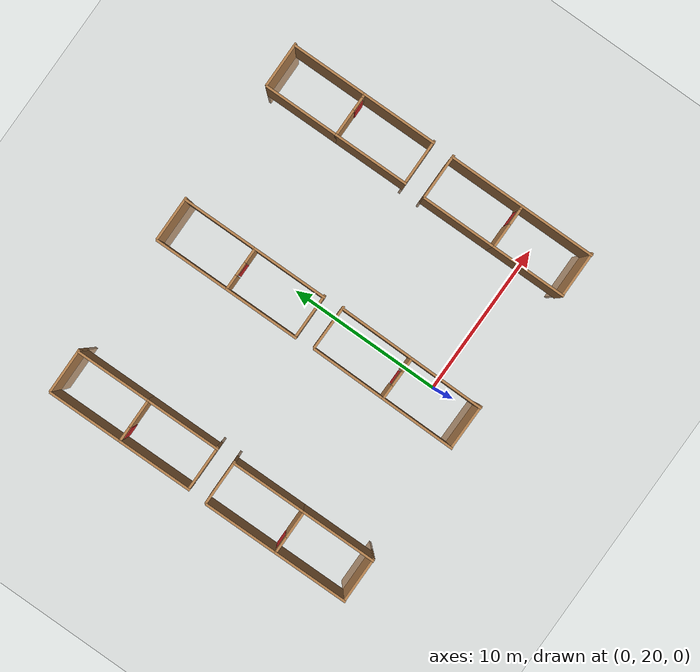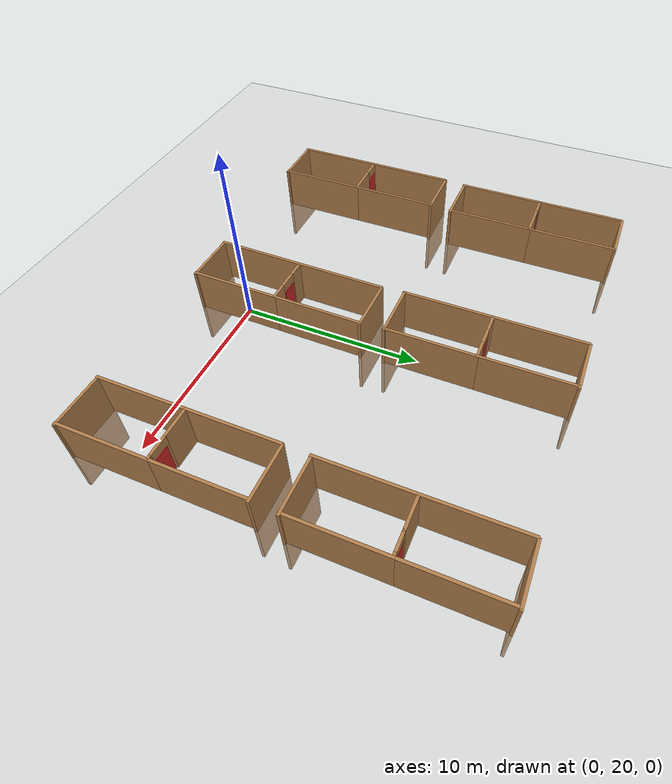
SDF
<sdf version="1.6">
 <world name="default">
  <model name="ground_plane">
   <static>1</static>
   <link name="link">
    <collision name="collision">
     <geometry><plane><normal>0 0 1</normal><size>100 100</size></plane></geometry>
     <surface><friction><ode><mu>100</mu><mu2>50</mu2></ode></friction></surface>
    </collision>
    <visual name="visual">
     <cast_shadows>0</cast_shadows>
     <geometry><plane><normal>0 0 1</normal><size>100 100</size></plane></geometry>
     <material>
      <script><uri>file://media/materials/scripts/gazebo.material</uri><name>Gazebo/Grey</name></script>
     </material>
    </visual>
   </link>
  </model>
  <model name="door_3">
   <link name="hinge">
    <inertial>
     <pose>-0.05 0 0 0 -0 0</pose>
     <mass>0.01</mass>
     <inertia><ixx>1</ixx><ixy>0</ixy><ixz>0</ixz><iyy>100</iyy><iyz>0</iyz><izz>1</izz></inertia>
    </inertial>
    <velocity_decay><linear>0</linear><angular>0</angular></velocity_decay>
   </link>
   <link name="door">
    <pose>0.1 -0.55 0.35 0 0 -1.57</pose>
    <inertial>
     <pose>0.1 -0.55 0.35 0 0 -1.57</pose>
     <mass>0.1</mass>
     <inertia><ixx>1</ixx><ixy>0</ixy><ixz>0</ixz><iyy>100</iyy><iyz>0</iyz><izz>1</izz></inertia>
    </inertial>
    <collision name="door_collision">
     <pose>0.1 -0.55 0.35 0 0 -1.57</pose>
     <geometry><box><size>0.9 0.15 1.8</size></box></geometry>
    </collision>
    <visual name="door_visual">
     <pose>0.1 -0.55 0.35 0 0 -1.57</pose>
     <geometry><box><size>0.9 0.15 1.8</size></box></geometry>
     <material><script><name>Gazebo/Red</name><uri>__default__</uri></script></material>
    </visual>
    <velocity_decay><linear>0</linear><angular>0</angular></velocity_decay>
   </link>
   <joint name="door_hinge" type="revolute">
    <child>door</child>
    <parent>hinge</parent>
    <pose>0.08 0 0 0 -0 0</pose>
    <axis>
     <xyz>0 0 1</xyz>
     <limit><lower>-1.57</lower><upper>1.57</upper><effort>0</effort><velocity>10</velocity></limit>
     <dynamics><spring_reference>0</spring_reference><spring_stiffness>0</spring_stiffness></dynamics>
     <use_parent_model_frame>0</use_parent_model_frame>
    </axis>
   </joint>
   <joint name="floor_link" type="revolute">
    <child>hinge</child>
    <parent>world</parent>
    <axis>
     <xyz>0 0 1</xyz>
     <limit><lower>0</lower><upper>0</upper><effort>0</effort><velocity>0</velocity></limit>
     <dynamics><spring_reference>0</spring_reference><spring_stiffness>0</spring_stiffness></dynamics>
     <use_parent_model_frame>0</use_parent_model_frame>
    </axis>
   </joint>
   <plugin name="door_plugin" filename="libdoor_plugin.so">
    <door_type>flip</door_type>
    <model_domain_space>door_</model_domain_space>
    <door_direction>clockwise</door_direction>
    <robotNamespace>/</robotNamespace>
   </plugin>
   <pose>-0.34012 22.8681 0.3 0 -0 0</pose>
  </model>
  <model name="door_4">
   <link name="hinge">
    <inertial>
     <pose>-0.05 0 0 0 -0 0</pose>
     <mass>0.01</mass>
     <inertia><ixx>1</ixx><ixy>0</ixy><ixz>0</ixz><iyy>100</iyy><iyz>0</iyz><izz>1</izz></inertia>
    </inertial>
    <velocity_decay><linear>0</linear><angular>0</angular></velocity_decay>
   </link>
   <link name="door">
    <pose>0.1 -0.5 0.35 0 0 -1.57</pose>
    <inertial>
     <pose>0.1 -0.5 0.35 0 0 -1.57</pose>
     <mass>0.1</mass>
     <inertia><ixx>1</ixx><ixy>0</ixy><ixz>0</ixz><iyy>100</iyy><iyz>0</iyz><izz>1</izz></inertia>
    </inertial>
    <collision name="door_collision">
     <pose>0.1 -0.5 0.35 0 0 -1.57</pose>
     <geometry><box><size>0.8 0.15 1.8</size></box></geometry>
    </collision>
    <visual name="door_visual">
     <pose>0.1 -0.5 0.35 0 0 -1.57</pose>
     <geometry><box><size>0.8 0.15 1.8</size></box></geometry>
     <material><script><name>Gazebo/Red</name><uri>__default__</uri></script></material>
    </visual>
    <velocity_decay><linear>0</linear><angular>0</angular></velocity_decay>
   </link>
   <joint name="door_hinge" type="revolute">
    <child>door</child>
    <parent>hinge</parent>
    <pose>0.08 0 0 0 -0 0</pose>
    <axis>
     <xyz>0 0 1</xyz>
     <limit><lower>-1.57</lower><upper>1.57</upper><effort>0</effort><velocity>10</velocity></limit>
     <dynamics><spring_reference>0</spring_reference><spring_stiffness>0</spring_stiffness></dynamics>
     <use_parent_model_frame>0</use_parent_model_frame>
    </axis>
   </joint>
   <joint name="floor_link" type="revolute">
    <child>hinge</child>
    <parent>world</parent>
    <axis>
     <xyz>0 0 1</xyz>
     <limit><lower>0</lower><upper>0</upper><effort>0</effort><velocity>0</velocity></limit>
     <dynamics><spring_reference>0</spring_reference><spring_stiffness>0</spring_stiffness></dynamics>
     <use_parent_model_frame>0</use_parent_model_frame>
    </axis>
   </joint>
   <plugin name="door_plugin" filename="libdoor_plugin.so">
    <door_type>flip</door_type>
    <model_domain_space>door_</model_domain_space>
    <door_direction>clockwise</door_direction>
    <robotNamespace>/</robotNamespace>
   </plugin>
   <pose>-0.425173 33.8346 0.3 0 -0 0</pose>
  </model>
  <model name="door_11">
   <link name="hinge">
    <inertial>
     <pose>-0.05 0 0 0 -0 0</pose>
     <mass>0.01</mass>
     <inertia><ixx>1</ixx><ixy>0</ixy><ixz>0</ixz><iyy>100</iyy><iyz>0</iyz><izz>1</izz></inertia>
    </inertial>
    <velocity_decay><linear>0</linear><angular>0</angular></velocity_decay>
   </link>
   <link name="door">
    <pose>0.1 -0.55 0.35 0 0 -1.57</pose>
    <inertial>
     <pose>0.1 -0.55 0.35 0 0 -1.57</pose>
     <mass>0.1</mass>
     <inertia><ixx>1</ixx><ixy>0</ixy><ixz>0</ixz><iyy>100</iyy><iyz>0</iyz><izz>1</izz></inertia>
    </inertial>
    <collision name="door_collision">
     <pose>0.1 -0.55 0.35 0 0 -1.57</pose>
     <geometry><box><size>0.9 0.15 1.8</size></box></geometry>
    </collision>
    <visual name="door_visual">
     <pose>0.1 -0.55 0.35 0 0 -1.57</pose>
     <geometry><box><size>0.9 0.15 1.8</size></box></geometry>
     <material><script><name>Gazebo/Red</name><uri>__default__</uri></script></material>
    </visual>
    <velocity_decay><linear>0</linear><angular>0</angular></velocity_decay>
   </link>
   <joint name="door_hinge" type="revolute">
    <child>door</child>
    <parent>hinge</parent>
    <pose>0.08 0 0 0 -0 0</pose>
    <axis>
     <xyz>0 0 1</xyz>
     <limit><lower>-1.57</lower><upper>1.57</upper><effort>0</effort><velocity>10</velocity></limit>
     <dynamics><spring_reference>0</spring_reference><spring_stiffness>0</spring_stiffness></dynamics>
     <use_parent_model_frame>0</use_parent_model_frame>
    </axis>
   </joint>
   <joint name="floor_link" type="revolute">
    <child>hinge</child>
    <parent>world</parent>
    <axis>
     <xyz>0 0 1</xyz>
     <limit><lower>0</lower><upper>0</upper><effort>0</effort><velocity>0</velocity></limit>
     <dynamics><spring_reference>0</spring_reference><spring_stiffness>0</spring_stiffness></dynamics>
     <use_parent_model_frame>0</use_parent_model_frame>
    </axis>
   </joint>
   <plugin name="door_plugin" filename="libdoor_plugin.so">
    <door_type>flip</door_type>
    <model_domain_space>door_</model_domain_space>
    <door_direction>clockwise</door_direction>
    <robotNamespace>/</robotNamespace>
   </plugin>
   <pose>11.2017 22.7287 0.3 0 -0 0</pose>
  </model>
  <model name="door_12">
   <link name="hinge">
    <inertial>
     <pose>-0.05 0 0 0 -0 0</pose>
     <mass>0.01</mass>
     <inertia><ixx>1</ixx><ixy>0</ixy><ixz>0</ixz><iyy>100</iyy><iyz>0</iyz><izz>1</izz></inertia>
    </inertial>
    <velocity_decay><linear>0</linear><angular>0</angular></velocity_decay>
   </link>
   <link name="door">
    <pose>0.1 -0.5 0.35 0 0 -1.57</pose>
    <inertial>
     <pose>0.1 -0.5 0.35 0 0 -1.57</pose>
     <mass>0.1</mass>
     <inertia><ixx>1</ixx><ixy>0</ixy><ixz>0</ixz><iyy>100</iyy><iyz>0</iyz><izz>1</izz></inertia>
    </inertial>
    <collision name="door_collision">
     <pose>0.1 -0.5 0.35 0 0 -1.57</pose>
     <geometry><box><size>0.8 0.15 1.8</size></box></geometry>
    </collision>
    <visual name="door_visual">
     <pose>0.1 -0.5 0.35 0 0 -1.57</pose>
     <geometry><box><size>0.8 0.15 1.8</size></box></geometry>
     <material><script><name>Gazebo/Red</name><uri>__default__</uri></script></material>
    </visual>
    <velocity_decay><linear>0</linear><angular>0</angular></velocity_decay>
   </link>
   <joint name="door_hinge" type="revolute">
    <child>door</child>
    <parent>hinge</parent>
    <pose>0.08 0 0 0 -0 0</pose>
    <axis>
     <xyz>0 0 1</xyz>
     <limit><lower>-1.57</lower><upper>1.57</upper><effort>0</effort><velocity>10</velocity></limit>
     <dynamics><spring_reference>0</spring_reference><spring_stiffness>0</spring_stiffness></dynamics>
     <use_parent_model_frame>0</use_parent_model_frame>
    </axis>
   </joint>
   <joint name="floor_link" type="revolute">
    <child>hinge</child>
    <parent>world</parent>
    <axis>
     <xyz>0 0 1</xyz>
     <limit><lower>0</lower><upper>0</upper><effort>0</effort><velocity>0</velocity></limit>
     <dynamics><spring_reference>0</spring_reference><spring_stiffness>0</spring_stiffness></dynamics>
     <use_parent_model_frame>0</use_parent_model_frame>
    </axis>
   </joint>
   <plugin name="door_plugin" filename="libdoor_plugin.so">
    <door_type>flip</door_type>
    <model_domain_space>door_</model_domain_space>
    <door_direction>clockwise</door_direction>
    <robotNamespace>/</robotNamespace>
   </plugin>
   <pose>11.1979 33.8103 0.3 0 -0 0</pose>
  </model>
  <model name="door_17">
   <link name="hinge">
    <inertial>
     <pose>-0.05 0 0 0 -0 0</pose>
     <mass>0.01</mass>
     <inertia><ixx>1</ixx><ixy>0</ixy><ixz>0</ixz><iyy>100</iyy><iyz>0</iyz><izz>1</izz></inertia>
    </inertial>
    <velocity_decay><linear>0</linear><angular>0</angular></velocity_decay>
   </link>
   <link name="door">
    <pose>0.1 -0.55 0.35 0 0 -1.57</pose>
    <inertial>
     <pose>0.1 -0.55 0.35 0 0 -1.57</pose>
     <mass>0.1</mass>
     <inertia><ixx>1</ixx><ixy>0</ixy><ixz>0</ixz><iyy>100</iyy><iyz>0</iyz><izz>1</izz></inertia>
    </inertial>
    <collision name="door_collision">
     <pose>0.1 -0.55 0.35 0 0 -1.57</pose>
     <geometry><box><size>0.9 0.15 1.8</size></box></geometry>
    </collision>
    <visual name="door_visual">
     <pose>0.1 -0.55 0.35 0 0 -1.57</pose>
     <geometry><box><size>0.9 0.15 1.8</size></box></geometry>
     <material><script><name>Gazebo/Red</name><uri>__default__</uri></script></material>
    </visual>
    <velocity_decay><linear>0</linear><angular>0</angular></velocity_decay>
   </link>
   <joint name="door_hinge" type="revolute">
    <child>door</child>
    <parent>hinge</parent>
    <pose>0.08 0 0 0 -0 0</pose>
    <axis>
     <xyz>0 0 1</xyz>
     <limit><lower>-1.57</lower><upper>1.57</upper><effort>0</effort><velocity>10</velocity></limit>
     <dynamics><spring_reference>0</spring_reference><spring_stiffness>0</spring_stiffness></dynamics>
     <use_parent_model_frame>0</use_parent_model_frame>
    </axis>
   </joint>
   <joint name="floor_link" type="revolute">
    <child>hinge</child>
    <parent>world</parent>
    <axis>
     <xyz>0 0 1</xyz>
     <limit><lower>0</lower><upper>0</upper><effort>0</effort><velocity>0</velocity></limit>
     <dynamics><spring_reference>0</spring_reference><spring_stiffness>0</spring_stiffness></dynamics>
     <use_parent_model_frame>0</use_parent_model_frame>
    </axis>
   </joint>
   <plugin name="door_plugin" filename="libdoor_plugin.so">
    <door_type>flip</door_type>
    <model_domain_space>door_</model_domain_space>
    <door_direction>clockwise</door_direction>
    <robotNamespace>/</robotNamespace>
   </plugin>
   <pose>-11.9613 22.8163 0.3 0 -0 0</pose>
  </model>
  <model name="door_18">
   <link name="hinge">
    <inertial>
     <pose>-0.05 0 0 0 -0 0</pose>
     <mass>0.01</mass>
     <inertia><ixx>1</ixx><ixy>0</ixy><ixz>0</ixz><iyy>100</iyy><iyz>0</iyz><izz>1</izz></inertia>
    </inertial>
    <velocity_decay><linear>0</linear><angular>0</angular></velocity_decay>
   </link>
   <link name="door">
    <pose>0.1 -0.5 0.35 0 0 -1.57</pose>
    <inertial>
     <pose>0.1 -0.5 0.35 0 0 -1.57</pose>
     <mass>0.1</mass>
     <inertia><ixx>1</ixx><ixy>0</ixy><ixz>0</ixz><iyy>100</iyy><iyz>0</iyz><izz>1</izz></inertia>
    </inertial>
    <collision name="door_collision">
     <pose>0.1 -0.5 0.35 0 0 -1.57</pose>
     <geometry><box><size>0.8 0.15 1.8</size></box></geometry>
    </collision>
    <visual name="door_visual">
     <pose>0.1 -0.5 0.35 0 0 -1.57</pose>
     <geometry><box><size>0.8 0.15 1.8</size></box></geometry>
     <material><script><name>Gazebo/Red</name><uri>__default__</uri></script></material>
    </visual>
    <velocity_decay><linear>0</linear><angular>0</angular></velocity_decay>
   </link>
   <joint name="door_hinge" type="revolute">
    <child>door</child>
    <parent>hinge</parent>
    <pose>0.08 0 0 0 -0 0</pose>
    <axis>
     <xyz>0 0 1</xyz>
     <limit><lower>-1.57</lower><upper>1.57</upper><effort>0</effort><velocity>10</velocity></limit>
     <dynamics><spring_reference>0</spring_reference><spring_stiffness>0</spring_stiffness></dynamics>
     <use_parent_model_frame>0</use_parent_model_frame>
    </axis>
   </joint>
   <joint name="floor_link" type="revolute">
    <child>hinge</child>
    <parent>world</parent>
    <axis>
     <xyz>0 0 1</xyz>
     <limit><lower>0</lower><upper>0</upper><effort>0</effort><velocity>0</velocity></limit>
     <dynamics><spring_reference>0</spring_reference><spring_stiffness>0</spring_stiffness></dynamics>
     <use_parent_model_frame>0</use_parent_model_frame>
    </axis>
   </joint>
   <plugin name="door_plugin" filename="libdoor_plugin.so">
    <door_type>flip</door_type>
    <model_domain_space>door_</model_domain_space>
    <door_direction>clockwise</door_direction>
    <robotNamespace>/</robotNamespace>
   </plugin>
   <pose>-11.987 33.7516 0.3 0 -0 0</pose>
  </model>
  <model name="right090_3">
   <pose>9.62828 22.1009 0.012787 0 -0 1.57346</pose>
   <link name="Wall_11">
    <collision name="Wall_11_Collision">
     <geometry><box><size>5 0.15 2.5</size></box></geometry>
     <pose>0 0 1.25 0 -0 0</pose>
    </collision>
    <visual name="Wall_11_Visual">
     <pose>0 0 1.25 0 -0 0</pose>
     <geometry><box><size>5 0.15 2.5</size></box></geometry>
     <material>
      <script><uri>file://media/materials/scripts/gazebo.material</uri><name>Gazebo/Wood</name></script>
      <ambient>1 1 1 1</ambient>
     </material>
     <meta><layer>0</layer></meta>
    </visual>
    <pose>-2.425 -1.83058 0 0 -0 3.14159</pose>
   </link>
   <link name="Wall_5">
    <collision name="Wall_5_Collision">
     <geometry><box><size>5 0.15 2.5</size></box></geometry>
     <pose>0 0 1.25 0 -0 0</pose>
    </collision>
    <visual name="Wall_5_Visual">
     <pose>0 0 1.25 0 -0 0</pose>
     <geometry><box><size>5 0.15 2.5</size></box></geometry>
     <material>
      <script><uri>file://media/materials/scripts/gazebo.material</uri><name>Gazebo/Wood</name></script>
      <ambient>1 1 1 1</ambient>
     </material>
     <meta><layer>0</layer></meta>
    </visual>
    <pose>-2.425 1.01942 0 0 -0 0</pose>
   </link>
   <link name="Wall_6">
    <pose>0 -0.405576 0 0 -0 -1.5708</pose>
    <visual name="Wall_6_Visual_0">
     <pose>-0.6025 0 1.25 0 -0 0</pose>
     <geometry><box><size>1.555 0.15 2.5</size></box></geometry>
     <material>
      <script><uri>file://media/materials/scripts/gazebo.material</uri><name>Gazebo/Wood</name></script>
      <ambient>1 1 1 1</ambient>
     </material>
     <meta><layer>0</layer></meta>
    </visual>
    <collision name="Wall_6_Collision_0">
     <geometry><box><size>1.555 0.15 2.5</size></box></geometry>
     <pose>-0.6025 0 1.25 0 -0 0</pose>
    </collision>
    <visual name="Wall_6_Visual_1">
     <pose>1.2975 0 1.25 0 -0 0</pose>
     <geometry><box><size>0.195 0.15 2.5</size></box></geometry>
     <material>
      <script><uri>file://media/materials/scripts/gazebo.material</uri><name>Gazebo/Wood</name></script>
      <ambient>1 1 1 1</ambient>
     </material>
     <meta><layer>0</layer></meta>
    </visual>
    <collision name="Wall_6_Collision_1">
     <geometry><box><size>0.195 0.15 2.5</size></box></geometry>
     <pose>1.2975 0 1.25 0 -0 0</pose>
    </collision>
    <visual name="Wall_6_Visual_2">
     <pose>0.705 0 2.25 0 -0 0</pose>
     <geometry><box><size>1.1 0.15 0.5</size></box></geometry>
     <material>
      <script><uri>file://media/materials/scripts/gazebo.material</uri><name>Gazebo/Wood</name></script>
      <ambient>1 1 1 1</ambient>
     </material>
     <meta><layer>0</layer></meta>
    </visual>
    <collision name="Wall_6_Collision_2">
     <geometry><box><size>1.1 0.15 0.5</size></box></geometry>
     <pose>0.705 0 2.25 0 -0 0</pose>
    </collision>
   </link>
   <link name="Wall_7">
    <collision name="Wall_7_Collision">
     <geometry><box><size>5 0.15 2.5</size></box></geometry>
     <pose>0 0 1.25 0 -0 0</pose>
    </collision>
    <visual name="Wall_7_Visual">
     <pose>0 0 1.25 0 -0 0</pose>
     <geometry><box><size>5 0.15 2.5</size></box></geometry>
     <material>
      <script><uri>file://media/materials/scripts/gazebo.material</uri><name>Gazebo/Wood</name></script>
      <ambient>1 1 1 1</ambient>
     </material>
     <meta><layer>0</layer></meta>
    </visual>
    <pose>2.425 -1.83058 0 0 -0 0</pose>
   </link>
   <link name="Wall_9">
    <collision name="Wall_9_Collision">
     <geometry><box><size>5 0.15 2.5</size></box></geometry>
     <pose>0 0 1.25 0 -0 0</pose>
    </collision>
    <visual name="Wall_9_Visual">
     <pose>0 0 1.25 0 -0 0</pose>
     <geometry><box><size>5 0.15 2.5</size></box></geometry>
     <material>
      <script><uri>file://media/materials/scripts/gazebo.material</uri><name>Gazebo/Wood</name></script>
      <ambient>1 1 1 1</ambient>
     </material>
     <meta><layer>0</layer></meta>
    </visual>
    <pose>2.425 1.01942 0 0 -0 0</pose>
   </link>
   <link name="Wall_10">
    <collision name="Wall_10_Collision">
     <geometry><box><size>0.15 3 5</size></box></geometry>
     <pose>-7.25 -1.5 0 0 -0 0</pose>
    </collision>
    <visual name="Wall_10_Visual">
     <pose>-7.25 -1.5 0 0 -0 0</pose>
     <geometry><box><size>0.15 3 5</size></box></geometry>
     <material>
      <script><uri>file://media/materials/scripts/gazebo.material</uri><name>Gazebo/Wood</name></script>
      <ambient>1 1 1 1</ambient>
     </material>
     <meta><layer>0</layer></meta>
    </visual>
    <pose>2.425 1.01942 0 0 -0 0</pose>
   </link>
   <link name="Wall_12">
    <collision name="Wall_12_Collision">
     <geometry><box><size>0.15 3 5</size></box></geometry>
     <pose>2.5 -1.5 0 0 -0 0</pose>
    </collision>
    <visual name="Wall_12_Visual">
     <pose>2.5 -1.5 0 0 -0 0</pose>
     <geometry><box><size>0.15 3 5</size></box></geometry>
     <material>
      <script><uri>file://media/materials/scripts/gazebo.material</uri><name>Gazebo/Wood</name></script>
      <ambient>1 1 1 1</ambient>
     </material>
     <meta><layer>0</layer></meta>
    </visual>
    <pose>2.425 1.01942 0 0 -0 0</pose>
   </link>
   <static>1</static>
  </model>
  <model name="middle100">
   <pose>-1.18373 22.2357 0 0 -0 1.56265</pose>
   <link name="Wall_11">
    <collision name="Wall_11_Collision">
     <geometry><box><size>5 0.15 2.5</size></box></geometry>
     <pose>0 0 1.25 0 -0 0</pose>
    </collision>
    <visual name="Wall_11_Visual">
     <pose>0 0 1.25 0 -0 0</pose>
     <geometry><box><size>5 0.15 2.5</size></box></geometry>
     <material>
      <script><uri>file://media/materials/scripts/gazebo.material</uri><name>Gazebo/Wood</name></script>
      <ambient>1 1 1 1</ambient>
     </material>
     <meta><layer>0</layer></meta>
    </visual>
    <pose>-2.425 -1.83058 0 0 -0 3.14159</pose>
   </link>
   <link name="Wall_5">
    <collision name="Wall_5_Collision">
     <geometry><box><size>5 0.15 2.5</size></box></geometry>
     <pose>0 0 1.25 0 -0 0</pose>
    </collision>
    <visual name="Wall_5_Visual">
     <pose>0 0 1.25 0 -0 0</pose>
     <geometry><box><size>5 0.15 2.5</size></box></geometry>
     <material>
      <script><uri>file://media/materials/scripts/gazebo.material</uri><name>Gazebo/Wood</name></script>
      <ambient>1 1 1 1</ambient>
     </material>
     <meta><layer>0</layer></meta>
    </visual>
    <pose>-2.425 1.01942 0 0 -0 0</pose>
   </link>
   <link name="Wall_6">
    <pose>0 -0.405576 0 0 -0 -1.5708</pose>
    <visual name="Wall_6_Visual_0">
     <pose>-1.0025 0 1.25 0 -0 0</pose>
     <geometry><box><size>0.995 0.15 2.5</size></box></geometry>
     <material>
      <script><uri>file://media/materials/scripts/gazebo.material</uri><name>Gazebo/Wood</name></script>
      <ambient>1 1 1 1</ambient>
     </material>
     <meta><layer>0</layer></meta>
    </visual>
    <collision name="Wall_6_Collision_0">
     <geometry><box><size>0.995 0.15 2.5</size></box></geometry>
     <pose>-1.0025 0 1.25 0 -0 0</pose>
    </collision>
    <visual name="Wall_6_Visual_1">
     <pose>0.9975 0 1.25 0 -0 0</pose>
     <geometry><box><size>1.005 0.15 2.5</size></box></geometry>
     <material>
      <script><uri>file://media/materials/scripts/gazebo.material</uri><name>Gazebo/Wood</name></script>
      <ambient>1 1 1 1</ambient>
     </material>
     <meta><layer>0</layer></meta>
    </visual>
    <collision name="Wall_6_Collision_1">
     <geometry><box><size>1.005 0.15 2.5</size></box></geometry>
     <pose>0.9975 0 1.25 0 -0 0</pose>
    </collision>
    <visual name="Wall_6_Visual_2">
     <pose>-0.005 0 2.25 0 -0 0</pose>
     <geometry><box><size>1 0.15 0.5</size></box></geometry>
     <material>
      <script><uri>file://media/materials/scripts/gazebo.material</uri><name>Gazebo/Wood</name></script>
      <ambient>1 1 1 1</ambient>
     </material>
     <meta><layer>0</layer></meta>
    </visual>
    <collision name="Wall_6_Collision_2">
     <geometry><box><size>1 0.15 0.5</size></box></geometry>
     <pose>-0.005 0 2.25 0 -0 0</pose>
    </collision>
   </link>
   <link name="Wall_7">
    <collision name="Wall_7_Collision">
     <geometry><box><size>5 0.15 2.5</size></box></geometry>
     <pose>0 0 1.25 0 -0 0</pose>
    </collision>
    <visual name="Wall_7_Visual">
     <pose>0 0 1.25 0 -0 0</pose>
     <geometry><box><size>5 0.15 2.5</size></box></geometry>
     <material>
      <script><uri>file://media/materials/scripts/gazebo.material</uri><name>Gazebo/Wood</name></script>
      <ambient>1 1 1 1</ambient>
     </material>
     <meta><layer>0</layer></meta>
    </visual>
    <pose>2.425 -1.83058 0 0 -0 0</pose>
   </link>
   <link name="Wall_9">
    <collision name="Wall_9_Collision">
     <geometry><box><size>5 0.15 2.5</size></box></geometry>
     <pose>0 0 1.25 0 -0 0</pose>
    </collision>
    <visual name="Wall_9_Visual">
     <pose>0 0 1.25 0 -0 0</pose>
     <geometry><box><size>5 0.15 2.5</size></box></geometry>
     <material>
      <script><uri>file://media/materials/scripts/gazebo.material</uri><name>Gazebo/Wood</name></script>
      <ambient>1 1 1 1</ambient>
     </material>
     <meta><layer>0</layer></meta>
    </visual>
    <pose>2.425 1.01942 0 0 -0 0</pose>
   </link>
   <link name="Wall_10">
    <collision name="Wall_10_Collision">
     <geometry><box><size>0.15 3 5</size></box></geometry>
     <pose>-7.25 -1.5 0 0 -0 0</pose>
    </collision>
    <visual name="Wall_10_Visual">
     <pose>-7.25 -1.5 0 0 -0 0</pose>
     <geometry><box><size>0.15 3 5</size></box></geometry>
     <material>
      <script><uri>file://media/materials/scripts/gazebo.material</uri><name>Gazebo/Wood</name></script>
      <ambient>1 1 1 1</ambient>
     </material>
     <meta><layer>0</layer></meta>
    </visual>
    <pose>2.425 1.01942 0 0 -0 0</pose>
   </link>
   <link name="Wall_12">
    <collision name="Wall_12_Collision">
     <geometry><box><size>0.15 3 5</size></box></geometry>
     <pose>2.5 -1.5 0 0 -0 0</pose>
    </collision>
    <visual name="Wall_12_Visual">
     <pose>2.5 -1.5 0 0 -0 0</pose>
     <geometry><box><size>0.15 3 5</size></box></geometry>
     <material>
      <script><uri>file://media/materials/scripts/gazebo.material</uri><name>Gazebo/Wood</name></script>
      <ambient>1 1 1 1</ambient>
     </material>
     <meta><layer>0</layer></meta>
    </visual>
    <pose>2.425 1.01942 0 0 -0 0</pose>
   </link>
   <static>1</static>
  </model>
  <model name="left100">
   <pose>-11.9962 22.1595 0 0 -0 1.57634</pose>
   <link name="Wall_11">
    <collision name="Wall_11_Collision">
     <geometry><box><size>5 0.15 2.5</size></box></geometry>
     <pose>0 0 1.25 0 -0 0</pose>
    </collision>
    <visual name="Wall_11_Visual">
     <pose>0 0 1.25 0 -0 0</pose>
     <geometry><box><size>5 0.15 2.5</size></box></geometry>
     <material>
      <script><uri>file://media/materials/scripts/gazebo.material</uri><name>Gazebo/Wood</name></script>
      <ambient>1 1 1 1</ambient>
     </material>
     <meta><layer>0</layer></meta>
    </visual>
    <pose>-2.425 -1.83058 0 0 -0 3.14159</pose>
   </link>
   <link name="Wall_5">
    <collision name="Wall_5_Collision">
     <geometry><box><size>5 0.15 2.5</size></box></geometry>
     <pose>0 0 1.25 0 -0 0</pose>
    </collision>
    <visual name="Wall_5_Visual">
     <pose>0 0 1.25 0 -0 0</pose>
     <geometry><box><size>5 0.15 2.5</size></box></geometry>
     <material>
      <script><uri>file://media/materials/scripts/gazebo.material</uri><name>Gazebo/Wood</name></script>
      <ambient>1 1 1 1</ambient>
     </material>
     <meta><layer>0</layer></meta>
    </visual>
    <pose>-2.425 1.01942 0 0 -0 0</pose>
   </link>
   <link name="Wall_6">
    <pose>0 -0.405576 0 0 -0 -1.5708</pose>
    <visual name="Wall_6_Visual_0">
     <pose>-1.4225 0 1.25 0 -0 0</pose>
     <geometry><box><size>0.155 0.15 2.5</size></box></geometry>
     <material>
      <script><uri>file://media/materials/scripts/gazebo.material</uri><name>Gazebo/Wood</name></script>
      <ambient>1 1 1 1</ambient>
     </material>
     <meta><layer>0</layer></meta>
    </visual>
    <collision name="Wall_6_Collision_0">
     <geometry><box><size>0.155 0.15 2.5</size></box></geometry>
     <pose>-1.4225 0 1.25 0 -0 0</pose>
    </collision>
    <visual name="Wall_6_Visual_1">
     <pose>0.5775 0 1.25 0 -0 0</pose>
     <geometry><box><size>1.845 0.15 2.5</size></box></geometry>
     <material>
      <script><uri>file://media/materials/scripts/gazebo.material</uri><name>Gazebo/Wood</name></script>
      <ambient>1 1 1 1</ambient>
     </material>
     <meta><layer>0</layer></meta>
    </visual>
    <collision name="Wall_6_Collision_1">
     <geometry><box><size>1.845 0.15 2.5</size></box></geometry>
     <pose>0.5775 0 1.25 0 -0 0</pose>
    </collision>
    <visual name="Wall_6_Visual_2">
     <pose>-0.845 0 2.25 0 -0 0</pose>
     <geometry><box><size>1 0.15 0.5</size></box></geometry>
     <material>
      <script><uri>file://media/materials/scripts/gazebo.material</uri><name>Gazebo/Wood</name></script>
      <ambient>1 1 1 1</ambient>
     </material>
     <meta><layer>0</layer></meta>
    </visual>
    <collision name="Wall_6_Collision_2">
     <geometry><box><size>1 0.15 0.5</size></box></geometry>
     <pose>-0.845 0 2.25 0 -0 0</pose>
    </collision>
   </link>
   <link name="Wall_7">
    <collision name="Wall_7_Collision">
     <geometry><box><size>5 0.15 2.5</size></box></geometry>
     <pose>0 0 1.25 0 -0 0</pose>
    </collision>
    <visual name="Wall_7_Visual">
     <pose>0 0 1.25 0 -0 0</pose>
     <geometry><box><size>5 0.15 2.5</size></box></geometry>
     <material>
      <script><uri>file://media/materials/scripts/gazebo.material</uri><name>Gazebo/Wood</name></script>
      <ambient>1 1 1 1</ambient>
     </material>
     <meta><layer>0</layer></meta>
    </visual>
    <pose>2.425 -1.83058 0 0 -0 0</pose>
   </link>
   <link name="Wall_9">
    <collision name="Wall_9_Collision">
     <geometry><box><size>5 0.15 2.5</size></box></geometry>
     <pose>0 0 1.25 0 -0 0</pose>
    </collision>
    <visual name="Wall_9_Visual">
     <pose>0 0 1.25 0 -0 0</pose>
     <geometry><box><size>5 0.15 2.5</size></box></geometry>
     <material>
      <script><uri>file://media/materials/scripts/gazebo.material</uri><name>Gazebo/Wood</name></script>
      <ambient>1 1 1 1</ambient>
     </material>
     <meta><layer>0</layer></meta>
    </visual>
    <pose>2.425 1.01942 0 0 -0 0</pose>
   </link>
   <link name="Wall_10">
    <collision name="Wall_10_Collision">
     <geometry><box><size>0.15 3 5</size></box></geometry>
     <pose>-7.25 -1.5 0 0 -0 0</pose>
    </collision>
    <visual name="Wall_10_Visual">
     <pose>-7.25 -1.5 0 0 -0 0</pose>
     <geometry><box><size>0.15 3 5</size></box></geometry>
     <material>
      <script><uri>file://media/materials/scripts/gazebo.material</uri><name>Gazebo/Wood</name></script>
      <ambient>1 1 1 1</ambient>
     </material>
     <meta><layer>0</layer></meta>
    </visual>
    <pose>2.425 1.01942 0 0 -0 0</pose>
   </link>
   <link name="Wall_12">
    <collision name="Wall_12_Collision">
     <geometry><box><size>0.15 3 5</size></box></geometry>
     <pose>2.5 -1.5 0 0 -0 0</pose>
    </collision>
    <visual name="Wall_12_Visual">
     <pose>2.5 -1.5 0 0 -0 0</pose>
     <geometry><box><size>0.15 3 5</size></box></geometry>
     <material>
      <script><uri>file://media/materials/scripts/gazebo.material</uri><name>Gazebo/Wood</name></script>
      <ambient>1 1 1 1</ambient>
     </material>
     <meta><layer>0</layer></meta>
    </visual>
    <pose>2.425 1.01942 0 0 -0 0</pose>
   </link>
   <static>1</static>
  </model>
  <model name="left090">
   <pose>-11.9458 33.1917 0 0 -0 1.57732</pose>
   <link name="Wall_11">
    <collision name="Wall_11_Collision">
     <geometry><box><size>5 0.15 2.5</size></box></geometry>
     <pose>0 0 1.25 0 -0 0</pose>
    </collision>
    <visual name="Wall_11_Visual">
     <pose>0 0 1.25 0 -0 0</pose>
     <geometry><box><size>5 0.15 2.5</size></box></geometry>
     <material>
      <script><uri>file://media/materials/scripts/gazebo.material</uri><name>Gazebo/Wood</name></script>
      <ambient>1 1 1 1</ambient>
     </material>
     <meta><layer>0</layer></meta>
    </visual>
    <pose>-2.425 -1.83058 0 0 -0 3.14159</pose>
   </link>
   <link name="Wall_5">
    <collision name="Wall_5_Collision">
     <geometry><box><size>5 0.15 2.5</size></box></geometry>
     <pose>0 0 1.25 0 -0 0</pose>
    </collision>
    <visual name="Wall_5_Visual">
     <pose>0 0 1.25 0 -0 0</pose>
     <geometry><box><size>5 0.15 2.5</size></box></geometry>
     <material>
      <script><uri>file://media/materials/scripts/gazebo.material</uri><name>Gazebo/Wood</name></script>
      <ambient>1 1 1 1</ambient>
     </material>
     <meta><layer>0</layer></meta>
    </visual>
    <pose>-2.425 1.01942 0 0 -0 0</pose>
   </link>
   <link name="Wall_6">
    <pose>0 -0.405576 0 0 -0 -1.5708</pose>
    <visual name="Wall_6_Visual_0">
     <pose>-1.4225 0 1.25 0 -0 0</pose>
     <geometry><box><size>0.155 0.15 2.5</size></box></geometry>
     <material>
      <script><uri>file://media/materials/scripts/gazebo.material</uri><name>Gazebo/Wood</name></script>
      <ambient>1 1 1 1</ambient>
     </material>
     <meta><layer>0</layer></meta>
    </visual>
    <collision name="Wall_6_Collision_0">
     <geometry><box><size>0.155 0.15 2.5</size></box></geometry>
     <pose>-1.4225 0 1.25 0 -0 0</pose>
    </collision>
    <visual name="Wall_6_Visual_1">
     <pose>0.5275 0 1.25 0 -0 0</pose>
     <geometry><box><size>1.945 0.15 2.5</size></box></geometry>
     <material>
      <script><uri>file://media/materials/scripts/gazebo.material</uri><name>Gazebo/Wood</name></script>
      <ambient>1 1 1 1</ambient>
     </material>
     <meta><layer>0</layer></meta>
    </visual>
    <collision name="Wall_6_Collision_1">
     <geometry><box><size>1.945 0.15 2.5</size></box></geometry>
     <pose>0.5275 0 1.25 0 -0 0</pose>
    </collision>
    <visual name="Wall_6_Visual_2">
     <pose>-0.895 0 2.25 0 -0 0</pose>
     <geometry><box><size>0.9 0.15 0.5</size></box></geometry>
     <material>
      <script><uri>file://media/materials/scripts/gazebo.material</uri><name>Gazebo/Wood</name></script>
      <ambient>1 1 1 1</ambient>
     </material>
     <meta><layer>0</layer></meta>
    </visual>
    <collision name="Wall_6_Collision_2">
     <geometry><box><size>0.9 0.15 0.5</size></box></geometry>
     <pose>-0.895 0 2.25 0 -0 0</pose>
    </collision>
   </link>
   <link name="Wall_7">
    <collision name="Wall_7_Collision">
     <geometry><box><size>5 0.15 2.5</size></box></geometry>
     <pose>0 0 1.25 0 -0 0</pose>
    </collision>
    <visual name="Wall_7_Visual">
     <pose>0 0 1.25 0 -0 0</pose>
     <geometry><box><size>5 0.15 2.5</size></box></geometry>
     <material>
      <script><uri>file://media/materials/scripts/gazebo.material</uri><name>Gazebo/Wood</name></script>
      <ambient>1 1 1 1</ambient>
     </material>
     <meta><layer>0</layer></meta>
    </visual>
    <pose>2.425 -1.83058 0 0 -0 0</pose>
   </link>
   <link name="Wall_9">
    <collision name="Wall_9_Collision">
     <geometry><box><size>5 0.15 2.5</size></box></geometry>
     <pose>0 0 1.25 0 -0 0</pose>
    </collision>
    <visual name="Wall_9_Visual">
     <pose>0 0 1.25 0 -0 0</pose>
     <geometry><box><size>5 0.15 2.5</size></box></geometry>
     <material>
      <script><uri>file://media/materials/scripts/gazebo.material</uri><name>Gazebo/Wood</name></script>
      <ambient>1 1 1 1</ambient>
     </material>
     <meta><layer>0</layer></meta>
    </visual>
    <pose>2.425 1.01942 0 0 -0 0</pose>
   </link>
   <link name="Wall_10">
    <collision name="Wall_10_Collision">
     <geometry><box><size>0.15 3 5</size></box></geometry>
     <pose>-7.25 -1.5 0 0 -0 0</pose>
    </collision>
    <visual name="Wall_10_Visual">
     <pose>-7.25 -1.5 0 0 -0 0</pose>
     <geometry><box><size>0.15 3 5</size></box></geometry>
     <material>
      <script><uri>file://media/materials/scripts/gazebo.material</uri><name>Gazebo/Wood</name></script>
      <ambient>1 1 1 1</ambient>
     </material>
     <meta><layer>0</layer></meta>
    </visual>
    <pose>2.425 1.01942 0 0 -0 0</pose>
   </link>
   <link name="Wall_12">
    <collision name="Wall_12_Collision">
     <geometry><box><size>0.15 3 5</size></box></geometry>
     <pose>2.5 -1.5 0 0 -0 0</pose>
    </collision>
    <visual name="Wall_12_Visual">
     <pose>2.5 -1.5 0 0 -0 0</pose>
     <geometry><box><size>0.15 3 5</size></box></geometry>
     <material>
      <script><uri>file://media/materials/scripts/gazebo.material</uri><name>Gazebo/Wood</name></script>
      <ambient>1 1 1 1</ambient>
     </material>
     <meta><layer>0</layer></meta>
    </visual>
    <pose>2.425 1.01942 0 0 -0 0</pose>
   </link>
   <static>1</static>
  </model>
  <model name="middle090">
   <pose>-1.25883 33.2466 0 0 -0 1.57464</pose>
   <link name="Wall_11">
    <collision name="Wall_11_Collision">
     <geometry><box><size>5 0.15 2.5</size></box></geometry>
     <pose>0 0 1.25 0 -0 0</pose>
    </collision>
    <visual name="Wall_11_Visual">
     <pose>0 0 1.25 0 -0 0</pose>
     <geometry><box><size>5 0.15 2.5</size></box></geometry>
     <material>
      <script><uri>file://media/materials/scripts/gazebo.material</uri><name>Gazebo/Wood</name></script>
      <ambient>1 1 1 1</ambient>
     </material>
     <meta><layer>0</layer></meta>
    </visual>
    <pose>-2.425 -1.83058 0 0 -0 3.14159</pose>
   </link>
   <link name="Wall_5">
    <collision name="Wall_5_Collision">
     <geometry><box><size>5 0.15 2.5</size></box></geometry>
     <pose>0 0 1.25 0 -0 0</pose>
    </collision>
    <visual name="Wall_5_Visual">
     <pose>0 0 1.25 0 -0 0</pose>
     <geometry><box><size>5 0.15 2.5</size></box></geometry>
     <material>
      <script><uri>file://media/materials/scripts/gazebo.material</uri><name>Gazebo/Wood</name></script>
      <ambient>1 1 1 1</ambient>
     </material>
     <meta><layer>0</layer></meta>
    </visual>
    <pose>-2.425 1.01942 0 0 -0 0</pose>
   </link>
   <link name="Wall_6">
    <pose>0 -0.405576 0 0 -0 -1.5708</pose>
    <visual name="Wall_6_Visual_0">
     <pose>-0.9775 0 1.25 0 -0 0</pose>
     <geometry><box><size>1.045 0.15 2.5</size></box></geometry>
     <material>
      <script><uri>file://media/materials/scripts/gazebo.material</uri><name>Gazebo/Wood</name></script>
      <ambient>1 1 1 1</ambient>
     </material>
     <meta><layer>0</layer></meta>
    </visual>
    <collision name="Wall_6_Collision_0">
     <geometry><box><size>1.045 0.15 2.5</size></box></geometry>
     <pose>-0.9775 0 1.25 0 -0 0</pose>
    </collision>
    <visual name="Wall_6_Visual_1">
     <pose>0.9725 0 1.25 0 -0 0</pose>
     <geometry><box><size>1.055 0.15 2.5</size></box></geometry>
     <material>
      <script><uri>file://media/materials/scripts/gazebo.material</uri><name>Gazebo/Wood</name></script>
      <ambient>1 1 1 1</ambient>
     </material>
     <meta><layer>0</layer></meta>
    </visual>
    <collision name="Wall_6_Collision_1">
     <geometry><box><size>1.055 0.15 2.5</size></box></geometry>
     <pose>0.9725 0 1.25 0 -0 0</pose>
    </collision>
    <visual name="Wall_6_Visual_2">
     <pose>-0.005 0 2.25 0 -0 0</pose>
     <geometry><box><size>0.9 0.15 0.5</size></box></geometry>
     <material>
      <script><uri>file://media/materials/scripts/gazebo.material</uri><name>Gazebo/Wood</name></script>
      <ambient>1 1 1 1</ambient>
     </material>
     <meta><layer>0</layer></meta>
    </visual>
    <collision name="Wall_6_Collision_2">
     <geometry><box><size>0.9 0.15 0.5</size></box></geometry>
     <pose>-0.005 0 2.25 0 -0 0</pose>
    </collision>
   </link>
   <link name="Wall_7">
    <collision name="Wall_7_Collision">
     <geometry><box><size>5 0.15 2.5</size></box></geometry>
     <pose>0 0 1.25 0 -0 0</pose>
    </collision>
    <visual name="Wall_7_Visual">
     <pose>0 0 1.25 0 -0 0</pose>
     <geometry><box><size>5 0.15 2.5</size></box></geometry>
     <material>
      <script><uri>file://media/materials/scripts/gazebo.material</uri><name>Gazebo/Wood</name></script>
      <ambient>1 1 1 1</ambient>
     </material>
     <meta><layer>0</layer></meta>
    </visual>
    <pose>2.425 -1.83058 0 0 -0 0</pose>
   </link>
   <link name="Wall_9">
    <collision name="Wall_9_Collision">
     <geometry><box><size>5 0.15 2.5</size></box></geometry>
     <pose>0 0 1.25 0 -0 0</pose>
    </collision>
    <visual name="Wall_9_Visual">
     <pose>0 0 1.25 0 -0 0</pose>
     <geometry><box><size>5 0.15 2.5</size></box></geometry>
     <material>
      <script><uri>file://media/materials/scripts/gazebo.material</uri><name>Gazebo/Wood</name></script>
      <ambient>1 1 1 1</ambient>
     </material>
     <meta><layer>0</layer></meta>
    </visual>
    <pose>2.425 1.01942 0 0 -0 0</pose>
   </link>
   <link name="Wall_10">
    <collision name="Wall_10_Collision">
     <geometry><box><size>0.15 3 5</size></box></geometry>
     <pose>-7.25 -1.5 0 0 -0 0</pose>
    </collision>
    <visual name="Wall_10_Visual">
     <pose>-7.25 -1.5 0 0 -0 0</pose>
     <geometry><box><size>0.15 3 5</size></box></geometry>
     <material>
      <script><uri>file://media/materials/scripts/gazebo.material</uri><name>Gazebo/Wood</name></script>
      <ambient>1 1 1 1</ambient>
     </material>
     <meta><layer>0</layer></meta>
    </visual>
    <pose>2.425 1.01942 0 0 -0 0</pose>
   </link>
   <link name="Wall_12">
    <collision name="Wall_12_Collision">
     <geometry><box><size>0.15 3 5</size></box></geometry>
     <pose>2.5 -1.5 0 0 -0 0</pose>
    </collision>
    <visual name="Wall_12_Visual">
     <pose>2.5 -1.5 0 0 -0 0</pose>
     <geometry><box><size>0.15 3 5</size></box></geometry>
     <material>
      <script><uri>file://media/materials/scripts/gazebo.material</uri><name>Gazebo/Wood</name></script>
      <ambient>1 1 1 1</ambient>
     </material>
     <meta><layer>0</layer></meta>
    </visual>
    <pose>2.425 1.01942 0 0 -0 0</pose>
   </link>
   <static>1</static>
  </model>
  <model name="right090_4">
   <pose>9.63387 33.2397 0 0 -0 1.57635</pose>
   <link name="Wall_11">
    <collision name="Wall_11_Collision">
     <geometry><box><size>5 0.15 2.5</size></box></geometry>
     <pose>0 0 1.25 0 -0 0</pose>
    </collision>
    <visual name="Wall_11_Visual">
     <pose>0 0 1.25 0 -0 0</pose>
     <geometry><box><size>5 0.15 2.5</size></box></geometry>
     <material>
      <script><uri>file://media/materials/scripts/gazebo.material</uri><name>Gazebo/Wood</name></script>
      <ambient>1 1 1 1</ambient>
     </material>
     <meta><layer>0</layer></meta>
    </visual>
    <pose>-2.425 -1.83058 0 0 -0 3.14159</pose>
   </link>
   <link name="Wall_5">
    <collision name="Wall_5_Collision">
     <geometry><box><size>5 0.15 2.5</size></box></geometry>
     <pose>0 0 1.25 0 -0 0</pose>
    </collision>
    <visual name="Wall_5_Visual">
     <pose>0 0 1.25 0 -0 0</pose>
     <geometry><box><size>5 0.15 2.5</size></box></geometry>
     <material>
      <script><uri>file://media/materials/scripts/gazebo.material</uri><name>Gazebo/Wood</name></script>
      <ambient>1 1 1 1</ambient>
     </material>
     <meta><layer>0</layer></meta>
    </visual>
    <pose>-2.425 1.01942 0 0 -0 0</pose>
   </link>
   <link name="Wall_6">
    <pose>0 -0.405576 0 0 -0 -1.5708</pose>
    <visual name="Wall_6_Visual_0">
     <pose>-0.5525 0 1.25 0 -0 0</pose>
     <geometry><box><size>1.755 0.15 2.5</size></box></geometry>
     <material>
      <script><uri>file://media/materials/scripts/gazebo.material</uri><name>Gazebo/Wood</name></script>
      <ambient>1 1 1 1</ambient>
     </material>
     <meta><layer>0</layer></meta>
    </visual>
    <collision name="Wall_6_Collision_0">
     <geometry><box><size>1.755 0.15 2.5</size></box></geometry>
     <pose>-0.5525 0 1.25 0 -0 0</pose>
    </collision>
    <visual name="Wall_6_Visual_1">
     <pose>1.2975 0 1.25 0 -0 0</pose>
     <geometry><box><size>0.195 0.15 2.5</size></box></geometry>
     <material>
      <script><uri>file://media/materials/scripts/gazebo.material</uri><name>Gazebo/Wood</name></script>
      <ambient>1 1 1 1</ambient>
     </material>
     <meta><layer>0</layer></meta>
    </visual>
    <collision name="Wall_6_Collision_1">
     <geometry><box><size>0.195 0.15 2.5</size></box></geometry>
     <pose>1.2975 0 1.25 0 -0 0</pose>
    </collision>
    <visual name="Wall_6_Visual_2">
     <pose>0.705 0 2.25 0 -0 0</pose>
     <geometry><box><size>1 0.15 0.5</size></box></geometry>
     <material>
      <script><uri>file://media/materials/scripts/gazebo.material</uri><name>Gazebo/Wood</name></script>
      <ambient>1 1 1 1</ambient>
     </material>
     <meta><layer>0</layer></meta>
    </visual>
    <collision name="Wall_6_Collision_2">
     <geometry><box><size>1 0.15 0.5</size></box></geometry>
     <pose>0.705 0 2.25 0 -0 0</pose>
    </collision>
   </link>
   <link name="Wall_7">
    <collision name="Wall_7_Collision">
     <geometry><box><size>5 0.15 2.5</size></box></geometry>
     <pose>0 0 1.25 0 -0 0</pose>
    </collision>
    <visual name="Wall_7_Visual">
     <pose>0 0 1.25 0 -0 0</pose>
     <geometry><box><size>5 0.15 2.5</size></box></geometry>
     <material>
      <script><uri>file://media/materials/scripts/gazebo.material</uri><name>Gazebo/Wood</name></script>
      <ambient>1 1 1 1</ambient>
     </material>
     <meta><layer>0</layer></meta>
    </visual>
    <pose>2.425 -1.83058 0 0 -0 0</pose>
   </link>
   <link name="Wall_9">
    <collision name="Wall_9_Collision">
     <geometry><box><size>5 0.15 2.5</size></box></geometry>
     <pose>0 0 1.25 0 -0 0</pose>
    </collision>
    <visual name="Wall_9_Visual">
     <pose>0 0 1.25 0 -0 0</pose>
     <geometry><box><size>5 0.15 2.5</size></box></geometry>
     <material>
      <script><uri>file://media/materials/scripts/gazebo.material</uri><name>Gazebo/Wood</name></script>
      <ambient>1 1 1 1</ambient>
     </material>
     <meta><layer>0</layer></meta>
    </visual>
    <pose>2.425 1.01942 0 0 -0 0</pose>
   </link>
   <link name="Wall_10">
    <collision name="Wall_10_Collision">
     <geometry><box><size>0.15 3 5</size></box></geometry>
     <pose>-7.25 -1.5 0 0 -0 0</pose>
    </collision>
    <visual name="Wall_10_Visual">
     <pose>-7.25 -1.5 0 0 -0 0</pose>
     <geometry><box><size>0.15 3 5</size></box></geometry>
     <material>
      <script><uri>file://media/materials/scripts/gazebo.material</uri><name>Gazebo/Wood</name></script>
      <ambient>1 1 1 1</ambient>
     </material>
     <meta><layer>0</layer></meta>
    </visual>
    <pose>2.425 1.01942 0 0 -0 0</pose>
   </link>
   <link name="Wall_12">
    <collision name="Wall_12_Collision">
     <geometry><box><size>0.15 3 5</size></box></geometry>
     <pose>2.5 -1.5 0 0 -0 0</pose>
    </collision>
    <visual name="Wall_12_Visual">
     <pose>2.5 -1.5 0 0 -0 0</pose>
     <geometry><box><size>0.15 3 5</size></box></geometry>
     <material>
      <script><uri>file://media/materials/scripts/gazebo.material</uri><name>Gazebo/Wood</name></script>
      <ambient>1 1 1 1</ambient>
     </material>
     <meta><layer>0</layer></meta>
    </visual>
    <pose>2.425 1.01942 0 0 -0 0</pose>
   </link>
   <static>1</static>
  </model>
 </world>
</sdf>
